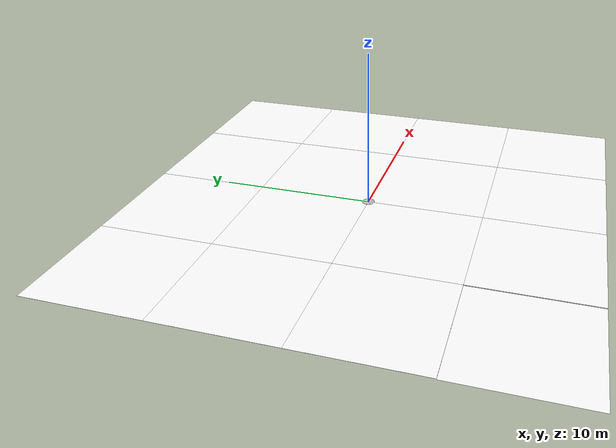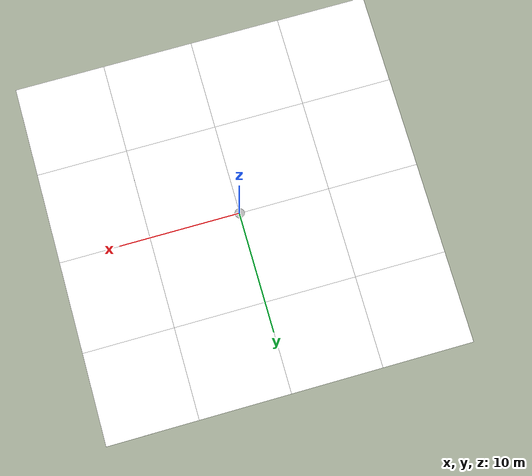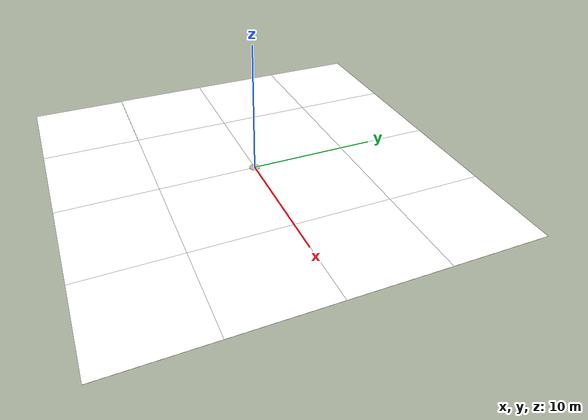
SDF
<?xml version='1.0' encoding='utf-8'?>
<sdf version='1.10'>
  <world name='eletroquad26_m2'>

    <physics type='ode'>
      <max_step_size>0.001</max_step_size>
      <real_time_factor>1</real_time_factor>
      <real_time_update_rate>1000</real_time_update_rate>
    </physics>
    <gravity>0 0 -9.8000000000000007</gravity>
    <magnetic_field>5.5644999999999998e-06 2.2875799999999999e-05 -4.2388400000000002e-05</magnetic_field>
    <atmosphere type='adiabatic'/>

    <scene>
      <ambient>0.400000006 0.400000006 0.400000006 1</ambient>
      <background>0.699999988 0.699999988 0.699999988 1</background>
      <sky/>
      <shadows>true</shadows>
    </scene>

    <frame name='above_grid'>
      <pose degrees='true'>0 0 0.02 0 0 0</pose>
    </frame>

    <!-- Takeoff -->
    <include>
      <uri>models/miscs/takeoff_platform</uri>
      <static>true</static>
      <pose degrees='true' relative_to='above_grid'>0 0 0.01 0 0 0</pose>
    </include>
    <!-- Takeoff -->

    <!-- Arena -->
    <include>
      <uri>models/miscs/arenas/circle</uri>
      <static>true</static>
      <pose relative_to='above_grid'/>
    </include>
    <!-- Arena -->

    <!-- Chao -->
      <include>
        <uri>models/miscs/ground_level</uri>
        <pose/>
      </include>
    <!-- Chao -->

    <!-- Luz -->
    <light name='sun' type='directional'>
      <pose>0 0 10 0 0 0</pose>
      <cast_shadows>true</cast_shadows>
      <intensity>1</intensity>
      <direction>-0.5 0.10000000000000001 -0.90000000000000002</direction>
      <diffuse>0.800000012 0.800000012 0.800000012 1</diffuse>
      <specular>0.200000003 0.200000003 0.200000003 1</specular>
      <attenuation>
        <range>1000</range>
        <linear>0.01</linear>
        <constant>0.90000000000000002</constant>
        <quadratic>0.001</quadratic>
      </attenuation>
      <spot>
        <inner_angle>0</inner_angle>
        <outer_angle>0</outer_angle>
        <falloff>0</falloff>
      </spot>
    </light>
    <!-- Luz -->

  <spherical_coordinates>
    <surface_model>EARTH_WGS84</surface_model>
    <world_frame_orientation>ENU</world_frame_orientation>
    <latitude_deg>47.397971057728974</latitude_deg>
    <longitude_deg>8.546163739800146</longitude_deg>
    <elevation>0</elevation>
  </spherical_coordinates>
  </world>
</sdf>

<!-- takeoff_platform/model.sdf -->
<sdf version='1.10'>
<model name='takeoff_platform'>
  <link name='takeoff_link'>
    <enable_wind>false</enable_wind>
    <include><uri>models/miscs/default_platform</uri></include>
    <visual name='takeoff_image'>
      <pose>0 0 0.006 0 0 0</pose>
      <geometry><cylinder>
        <radius>0.4</radius>
        <length>0.01</length>
      </cylinder></geometry>
        <material>
        <diffuse>0.7 0.7 0.7 1</diffuse>
        <specular>1 1 1 1</specular>
        <pbr>
          <metal>
            <albedo_map>materials/textures/takeoff.png</albedo_map>
            <metalness>0</metalness>
            <roughness>1</roughness>
          </metal>
        </pbr>
        </material>
    </visual>
  </link>
  <self_collide>false</self_collide>
</model>
</sdf>

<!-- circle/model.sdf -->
<sdf version='1.10'>
<model name='arena'>
  <link name='arena_link'>
    <enable_wind>false</enable_wind>
    <collision name='arena_collision'>
      <geometry><cylinder>
        <radius>7</radius>
        <length>0.001</length>
      </cylinder></geometry>
      <surface>
        <friction><ode/></friction>
        <bounce/>
        <contact/>
      </surface>
    </collision>
    <visual name='arena_visual'>
      <geometry><cylinder>
        <radius>7</radius>
        <length>0.001</length>
      </cylinder></geometry>
      <material>
        <ambient>0.4 0.4 0.4 1</ambient>
        <diffuse>1 1 1 1</diffuse>
        <specular>1 1 1 1</specular>
      </material>
    </visual>
  </link>
  <self_collide>false</self_collide>
</model>
</sdf>

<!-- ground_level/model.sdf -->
<sdf version='1.9'>
  <model name='ground_plane'>
    <static>true</static>
    <pose>0 0 0 0 0 0</pose>
    <self_collide>false</self_collide>
    <link name='link'>
      <collision name='collision'>
        <geometry>
          <plane>
            <normal>0 0 1</normal>
            <size>30 30</size>
          </plane>
        </geometry>
        <surface>
          <friction>
            <ode/>
          </friction>
          <bounce/>
          <contact/>
        </surface>
      </collision>
      <visual name='visual1'>
        <pose>-11.25 -11.25 0 0 0 1.5708</pose>
        <geometry>
          <plane>
            <normal>0 0 1</normal>
            <size>7.5 7.5</size>
          </plane>
        </geometry>
        <material>
          <diffuse>1.0 1.0 1.0</diffuse>
          <specular>1.0 1.0 1.0</specular>
          <pbr>
            <metal>
              <albedo_map>materials/textures/grass.png</albedo_map>
              <metalness>0</metalness>
              <roughness>0.7</roughness>
            </metal>
          </pbr>
        </material>
      </visual>
      <visual name='visual2'>
        <pose>-3.75 -11.25 0 0 0 3.14159</pose>
        <geometry>
          <plane>
            <normal>0 0 1</normal>
            <size>7.5 7.5</size>
          </plane>
        </geometry>
        <material>
          <diffuse>1.0 1.0 1.0</diffuse>
          <specular>1.0 1.0 1.0</specular>
          <pbr>
            <metal>
              <albedo_map>materials/textures/grass.png</albedo_map>
              <metalness>0</metalness>
              <roughness>0.7</roughness>
            </metal>
          </pbr>
        </material>
      </visual>
      <visual name='visual3'>
        <pose>3.75 -11.25 0 0 0 4.71239</pose>
        <geometry>
          <plane>
            <normal>0 0 1</normal>
            <size>7.5 7.5</size>
          </plane>
        </geometry>
        <material>
          <diffuse>1.0 1.0 1.0</diffuse>
          <specular>1.0 1.0 1.0</specular>
          <pbr>
            <metal>
              <albedo_map>materials/textures/grass.png</albedo_map>
              <metalness>0</metalness>
              <roughness>0.7</roughness>
            </metal>
          </pbr>
        </material>
      </visual>
      <visual name='visual4'>
        <pose>11.25 -11.25 0 0 0 0</pose>
        <geometry>
          <plane>
            <normal>0 0 1</normal>
            <size>7.5 7.5</size>
          </plane>
        </geometry>
        <material>
          <diffuse>1.0 1.0 1.0</diffuse>
          <specular>1.0 1.0 1.0</specular>
          <pbr>
            <metal>
              <albedo_map>materials/textures/grass.png</albedo_map>
              <metalness>0</metalness>
              <roughness>0.7</roughness>
            </metal>
          </pbr>
        </material>
      </visual>
      <visual name='visual5'>
        <pose>-11.25 -3.75 0 0 0 3.14159</pose>
        <geometry>
          <plane>
            <normal>0 0 1</normal>
            <size>7.5 7.5</size>
          </plane>
        </geometry>
        <material>
          <diffuse>1.0 1.0 1.0</diffuse>
          <specular>1.0 1.0 1.0</specular>
          <pbr>
            <metal>
              <albedo_map>materials/textures/grass.png</albedo_map>
              <metalness>0</metalness>
              <roughness>0.7</roughness>
            </metal>
          </pbr>
        </material>
      </visual>
      <visual name='visual6'>
        <pose>-3.75 -3.75 0 0 0 1.5708</pose>
        <geometry>
          <plane>
            <normal>0 0 1</normal>
            <size>7.5 7.5</size>
          </plane>
        </geometry>
        <material>
          <diffuse>1.0 1.0 1.0</diffuse>
          <specular>1.0 1.0 1.0</specular>
          <pbr>
            <metal>
              <albedo_map>materials/textures/grass.png</albedo_map>
              <metalness>0</metalness>
              <roughness>0.7</roughness>
            </metal>
          </pbr>
        </material>
      </visual>
      <visual name='visual7'>
        <pose>3.75 -3.75 0 0 0 0</pose>
        <geometry>
          <plane>
            <normal>0 0 1</normal>
            <size>7.5 7.5</size>
          </plane>
        </geometry>
        <material>
          <diffuse>1.0 1.0 1.0</diffuse>
          <specular>1.0 1.0 1.0</specular>
          <pbr>
            <metal>
              <albedo_map>materials/textures/grass.png</albedo_map>
              <metalness>0</metalness>
              <roughness>0.7</roughness>
            </metal>
          </pbr>
        </material>
      </visual>
      <visual name='visual8'>
        <pose>11.25 -3.75 0 0 0 4.71239</pose>
        <geometry>
          <plane>
            <normal>0 0 1</normal>
            <size>7.5 7.5</size>
          </plane>
        </geometry>
        <material>
          <diffuse>1.0 1.0 1.0</diffuse>
          <specular>1.0 1.0 1.0</specular>
          <pbr>
            <metal>
              <albedo_map>materials/textures/grass.png</albedo_map>
              <metalness>0</metalness>
              <roughness>0.7</roughness>
            </metal>
          </pbr>
        </material>
      </visual>
      <visual name='visual9'>
        <pose>-11.25 3.75 0 0 0 0</pose>
        <geometry>
          <plane>
            <normal>0 0 1</normal>
            <size>7.5 7.5</size>
          </plane>
        </geometry>
        <material>
          <diffuse>1.0 1.0 1.0</diffuse>
          <specular>1.0 1.0 1.0</specular>
          <pbr>
            <metal>
              <albedo_map>materials/textures/grass.png</albedo_map>
              <metalness>0</metalness>
              <roughness>0.7</roughness>
            </metal>
          </pbr>
        </material>
      </visual>
      <visual name='visual10'>
        <pose>-3.75 3.75 0 0 0 0</pose>
        <geometry>
          <plane>
            <normal>0 0 1</normal>
            <size>7.5 7.5</size>
          </plane>
        </geometry>
        <material>
          <diffuse>1.0 1.0 1.0</diffuse>
          <specular>1.0 1.0 1.0</specular>
          <pbr>
            <metal>
              <albedo_map>materials/textures/grass.png</albedo_map>
              <metalness>0</metalness>
              <roughness>0.7</roughness>
            </metal>
          </pbr>
        </material>
      </visual>
      <visual name='visual11'>
        <pose>3.75 3.75 0 0 0 3.14159</pose>
        <geometry>
          <plane>
            <normal>0 0 1</normal>
            <size>7.5 7.5</size>
          </plane>
        </geometry>
        <material>
          <diffuse>1.0 1.0 1.0</diffuse>
          <specular>1.0 1.0 1.0</specular>
          <pbr>
            <metal>
              <albedo_map>materials/textures/grass.png</albedo_map>
              <metalness>0</metalness>
              <roughness>0.7</roughness>
            </metal>
          </pbr>
        </material>
      </visual>
      <visual name='visual12'>
        <pose>11.25 3.75 0 0 0 4.71239</pose>
        <geometry>
          <plane>
            <normal>0 0 1</normal>
            <size>7.5 7.5</size>
          </plane>
        </geometry>
        <material>
          <diffuse>1.0 1.0 1.0</diffuse>
          <specular>1.0 1.0 1.0</specular>
          <pbr>
            <metal>
              <albedo_map>materials/textures/grass.png</albedo_map>
              <metalness>0</metalness>
              <roughness>0.7</roughness>
            </metal>
          </pbr>
        </material>
      </visual>
      <visual name='visual13'>
        <pose>-11.25 11.25 0 0 0 1.5708</pose>
        <geometry>
          <plane>
            <normal>0 0 1</normal>
            <size>7.5 7.5</size>
          </plane>
        </geometry>
        <material>
          <diffuse>1.0 1.0 1.0</diffuse>
          <specular>1.0 1.0 1.0</specular>
          <pbr>
            <metal>
              <albedo_map>materials/textures/grass.png</albedo_map>
              <metalness>0</metalness>
              <roughness>0.7</roughness>
            </metal>
          </pbr>
        </material>
      </visual>
      <visual name='visual14'>
        <pose>-3.75 11.25 0 0 0 3.14159</pose>
        <geometry>
          <plane>
            <normal>0 0 1</normal>
            <size>7.5 7.5</size>
          </plane>
        </geometry>
        <material>
          <diffuse>1.0 1.0 1.0</diffuse>
          <specular>1.0 1.0 1.0</specular>
          <pbr>
            <metal>
              <albedo_map>materials/textures/grass.png</albedo_map>
              <metalness>0</metalness>
              <roughness>0.7</roughness>
            </metal>
          </pbr>
        </material>
      </visual>
      <visual name='visual15'>
        <pose>3.75 11.25 0 0 0 0</pose>
        <geometry>
          <plane>
            <normal>0 0 1</normal>
            <size>7.5 7.5</size>
          </plane>
        </geometry>
        <material>
          <diffuse>1.0 1.0 1.0</diffuse>
          <specular>1.0 1.0 1.0</specular>
          <pbr>
            <metal>
              <albedo_map>materials/textures/grass.png</albedo_map>
              <metalness>0</metalness>
              <roughness>0.7</roughness>
            </metal>
          </pbr>
        </material>
      </visual>
      <visual name='visual16'>
        <pose>11.25 11.25 0 0 0 0</pose>
        <geometry>
          <plane>
            <normal>0 0 1</normal>
            <size>7.5 7.5</size>
          </plane>
        </geometry>
        <material>
          <diffuse>1.0 1.0 1.0</diffuse>
          <specular>1.0 1.0 1.0</specular>
          <pbr>
            <metal>
              <albedo_map>materials/textures/grass.png</albedo_map>
              <metalness>0</metalness>
              <roughness>0.7</roughness>
            </metal>
          </pbr>
        </material>
      </visual>
      <enable_wind>false</enable_wind>
    </link>
  </model>
</sdf>
